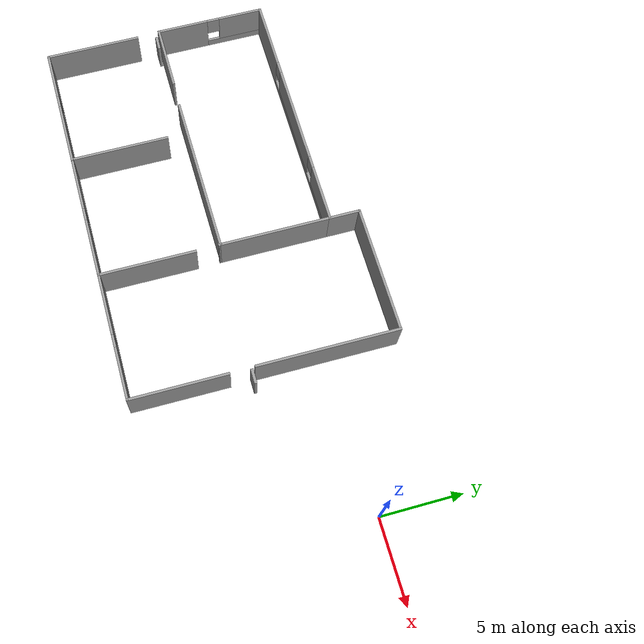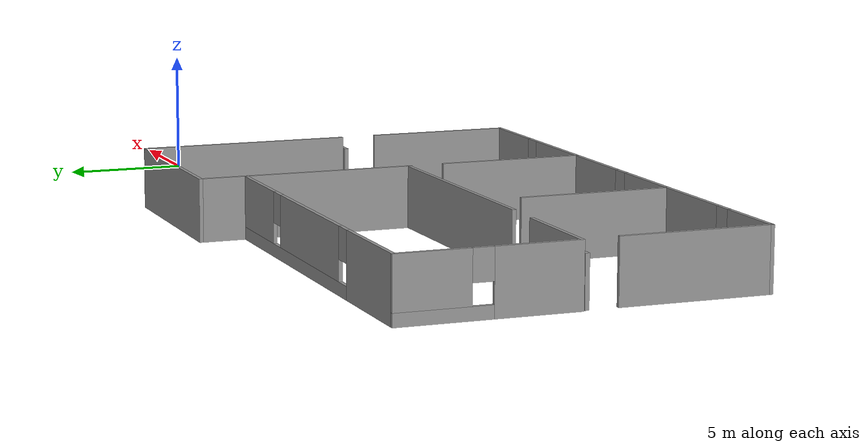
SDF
<?xml version='1.0'?>
<sdf version='1.6'>
  <model name='mybuilding'>
    <pose frame=''>-21.3689 -3.9287 0 0 -0 0</pose>
    <link name='Door_4'>
      <collision name='Door_4_Collision'>
        <geometry>
          <box>
            <size>0.9 0.17 2</size>
          </box>
        </geometry>
        <pose frame=''>0 0 1 0 -0 0</pose>
      </collision>
      <visual name='Door_4_Visual'>
        <pose frame=''>0 0 1 0 -0 0</pose>
        <geometry>
          <box>
            <size>0.9 0.17 2</size>
          </box>
        </geometry>
        <material>
          <script>
            <uri>file://media/materials/scripts/gazebo.material</uri>
            <name>Gazebo/Grey</name>
          </script>
        </material>
      </visual>
      <pose frame=''>-11.4439 -0.894916 0 0 -0 0</pose>
    </link>
    <link name='Door_5'>
      <collision name='Door_5_Collision'>
        <geometry>
          <box>
            <size>0.9 0.17 2</size>
          </box>
        </geometry>
        <pose frame=''>0 0 1 0 -0 0</pose>
      </collision>
      <visual name='Door_5_Visual'>
        <pose frame=''>0 0 1 0 -0 0</pose>
        <geometry>
          <box>
            <size>0.9 0.17 2</size>
          </box>
        </geometry>
        <material>
          <script>
            <uri>file://media/materials/scripts/gazebo.material</uri>
            <name>Gazebo/Grey</name>
          </script>
        </material>
      </visual>
      <pose frame=''>12.2646 -0.808846 0 0 -0 0</pose>
    </link>
    <link name='Wall_39'>
      <pose frame=''>-7.89313 -8.0223 0 0 -0 0</pose>
      <visual name='Wall_39_Visual_0'>
        <pose frame=''>-2.42526 0 1.25 0 -0 0</pose>
        <geometry>
          <box>
            <size>3.14947 0.15 2.5</size>
          </box>
        </geometry>
        <material>
          <script>
            <uri>file://media/materials/scripts/gazebo.material</uri>
            <name>Gazebo/Grey</name>
          </script>
          <ambient>1 1 1 1</ambient>
        </material>
        <meta>
          <layer>0</layer>
        </meta>
      </visual>
      <collision name='Wall_39_Collision_0'>
        <geometry>
          <box>
            <size>3.14947 0.15 2.5</size>
          </box>
        </geometry>
        <pose frame=''>-2.42526 0 1.25 0 -0 0</pose>
      </collision>
      <visual name='Wall_39_Visual_1'>
        <pose frame=''>1.57474 0 0.25 0 -0 0</pose>
        <geometry>
          <box>
            <size>4.85053 0.15 0.5</size>
          </box>
        </geometry>
        <material>
          <script>
            <uri>file://media/materials/scripts/gazebo.material</uri>
            <name>Gazebo/Grey</name>
          </script>
          <ambient>1 1 1 1</ambient>
        </material>
        <meta>
          <layer>0</layer>
        </meta>
      </visual>
      <collision name='Wall_39_Collision_1'>
        <geometry>
          <box>
            <size>4.85053 0.15 0.5</size>
          </box>
        </geometry>
        <pose frame=''>1.57474 0 0.25 0 -0 0</pose>
      </collision>
      <visual name='Wall_39_Visual_2'>
        <pose frame=''>1.97474 0 1.5 0 -0 0</pose>
        <geometry>
          <box>
            <size>4.05053 0.15 2</size>
          </box>
        </geometry>
        <material>
          <script>
            <uri>file://media/materials/scripts/gazebo.material</uri>
            <name>Gazebo/Grey</name>
          </script>
          <ambient>1 1 1 1</ambient>
        </material>
        <meta>
          <layer>0</layer>
        </meta>
      </visual>
      <collision name='Wall_39_Collision_2'>
        <geometry>
          <box>
            <size>4.05053 0.15 2</size>
          </box>
        </geometry>
        <pose frame=''>1.97474 0 1.5 0 -0 0</pose>
      </collision>
      <visual name='Wall_39_Visual_3'>
        <pose frame=''>-0.450527 0 1.9 0 -0 0</pose>
        <geometry>
          <box>
            <size>0.8 0.15 1.2</size>
          </box>
        </geometry>
        <material>
          <script>
            <uri>file://media/materials/scripts/gazebo.material</uri>
            <name>Gazebo/Grey</name>
          </script>
          <ambient>1 1 1 1</ambient>
        </material>
        <meta>
          <layer>0</layer>
        </meta>
      </visual>
      <collision name='Wall_39_Collision_3'>
        <geometry>
          <box>
            <size>0.8 0.15 1.2</size>
          </box>
        </geometry>
        <pose frame=''>-0.450527 0 1.9 0 -0 0</pose>
      </collision>
    </link>
    <link name='Wall_41'>
      <pose frame=''>0.131892 -8.02234 0 0 -0 1e-05</pose>
      <visual name='Wall_41_Visual_0'>
        <pose frame=''>-2.29715 0 1.25 0 -0 0</pose>
        <geometry>
          <box>
            <size>3.40571 0.15 2.5</size>
          </box>
        </geometry>
        <material>
          <script>
            <uri>file://media/materials/scripts/gazebo.material</uri>
            <name>Gazebo/Grey</name>
          </script>
          <ambient>1 1 1 1</ambient>
        </material>
        <meta>
          <layer>0</layer>
        </meta>
      </visual>
      <collision name='Wall_41_Collision_0'>
        <geometry>
          <box>
            <size>3.40571 0.15 2.5</size>
          </box>
        </geometry>
        <pose frame=''>-2.29715 0 1.25 0 -0 0</pose>
      </collision>
      <visual name='Wall_41_Visual_1'>
        <pose frame=''>1.70285 0 0.25 0 -0 0</pose>
        <geometry>
          <box>
            <size>4.59429 0.15 0.5</size>
          </box>
        </geometry>
        <material>
          <script>
            <uri>file://media/materials/scripts/gazebo.material</uri>
            <name>Gazebo/Grey</name>
          </script>
          <ambient>1 1 1 1</ambient>
        </material>
        <meta>
          <layer>0</layer>
        </meta>
      </visual>
      <collision name='Wall_41_Collision_1'>
        <geometry>
          <box>
            <size>4.59429 0.15 0.5</size>
          </box>
        </geometry>
        <pose frame=''>1.70285 0 0.25 0 -0 0</pose>
      </collision>
      <visual name='Wall_41_Visual_2'>
        <pose frame=''>2.10285 0 1.5 0 -0 0</pose>
        <geometry>
          <box>
            <size>3.79429 0.15 2</size>
          </box>
        </geometry>
        <material>
          <script>
            <uri>file://media/materials/scripts/gazebo.material</uri>
            <name>Gazebo/Grey</name>
          </script>
          <ambient>1 1 1 1</ambient>
        </material>
        <meta>
          <layer>0</layer>
        </meta>
      </visual>
      <collision name='Wall_41_Collision_2'>
        <geometry>
          <box>
            <size>3.79429 0.15 2</size>
          </box>
        </geometry>
        <pose frame=''>2.10285 0 1.5 0 -0 0</pose>
      </collision>
      <visual name='Wall_41_Visual_3'>
        <pose frame=''>-0.194294 0 1.9 0 -0 0</pose>
        <geometry>
          <box>
            <size>0.8 0.15 1.2</size>
          </box>
        </geometry>
        <material>
          <script>
            <uri>file://media/materials/scripts/gazebo.material</uri>
            <name>Gazebo/Grey</name>
          </script>
          <ambient>1 1 1 1</ambient>
        </material>
        <meta>
          <layer>0</layer>
        </meta>
      </visual>
      <collision name='Wall_41_Collision_3'>
        <geometry>
          <box>
            <size>0.8 0.15 1.2</size>
          </box>
        </geometry>
        <pose frame=''>-0.194294 0 1.9 0 -0 0</pose>
      </collision>
    </link>
    <link name='Wall_45'>
      <collision name='Wall_45_Collision'>
        <geometry>
          <box>
            <size>6 0.15 2.5</size>
          </box>
        </geometry>
        <pose frame=''>0 0 1.25 0 -0 0</pose>
      </collision>
      <visual name='Wall_45_Visual'>
        <pose frame=''>0 0 1.25 0 -0 0</pose>
        <geometry>
          <box>
            <size>6 0.15 2.5</size>
          </box>
        </geometry>
        <material>
          <script>
            <uri>file://media/materials/scripts/gazebo.material</uri>
            <name>Gazebo/Grey</name>
          </script>
          <ambient>1 1 1 1</ambient>
        </material>
        <meta>
          <layer>0</layer>
        </meta>
      </visual>
      <pose frame=''>-11.8181 -5.0973 0 0 -0 1.5708</pose>
    </link>
    <link name='Wall_47'>
      <collision name='Wall_47_Collision'>
        <geometry>
          <box>
            <size>6 0.15 2.5</size>
          </box>
        </geometry>
        <pose frame=''>0 0 1.25 0 -0 0</pose>
      </collision>
      <visual name='Wall_47_Visual'>
        <pose frame=''>0 0 1.25 0 -0 0</pose>
        <geometry>
          <box>
            <size>6 0.15 2.5</size>
          </box>
        </geometry>
        <material>
          <script>
            <uri>file://media/materials/scripts/gazebo.material</uri>
            <name>Gazebo/Grey</name>
          </script>
          <ambient>1 1 1 1</ambient>
        </material>
        <meta>
          <layer>0</layer>
        </meta>
      </visual>
      <pose frame=''>-3.96813 -4.9373 0 0 -0 1.5708</pose>
    </link>
    <link name='Wall_49'>
      <collision name='Wall_49_Collision'>
        <geometry>
          <box>
            <size>6 0.15 2.5</size>
          </box>
        </geometry>
        <pose frame=''>0 0 1.25 0 -0 0</pose>
      </collision>
      <visual name='Wall_49_Visual'>
        <pose frame=''>0 0 1.25 0 -0 0</pose>
        <geometry>
          <box>
            <size>6 0.15 2.5</size>
          </box>
        </geometry>
        <material>
          <script>
            <uri>file://media/materials/scripts/gazebo.material</uri>
            <name>Gazebo/Grey</name>
          </script>
          <ambient>1 1 1 1</ambient>
        </material>
        <meta>
          <layer>0</layer>
        </meta>
      </visual>
      <pose frame=''>4.05687 -5.0973 0 0 -0 1.5708</pose>
    </link>
    <link name='Wall_56'>
      <pose frame=''>7.98187 -8.0223 0 0 -0 0</pose>
      <visual name='Wall_56_Visual_0'>
        <pose frame=''>-2.03498 0 1.25 0 -0 0</pose>
        <geometry>
          <box>
            <size>3.93003 0.15 2.5</size>
          </box>
        </geometry>
        <material>
          <script>
            <uri>file://media/materials/scripts/gazebo.material</uri>
            <name>Gazebo/Grey</name>
          </script>
          <ambient>1 1 1 1</ambient>
        </material>
        <meta>
          <layer>0</layer>
        </meta>
      </visual>
      <collision name='Wall_56_Collision_0'>
        <geometry>
          <box>
            <size>3.93003 0.15 2.5</size>
          </box>
        </geometry>
        <pose frame=''>-2.03498 0 1.25 0 -0 0</pose>
      </collision>
      <visual name='Wall_56_Visual_1'>
        <pose frame=''>1.96502 0 0.25 0 -0 0</pose>
        <geometry>
          <box>
            <size>4.06997 0.15 0.5</size>
          </box>
        </geometry>
        <material>
          <script>
            <uri>file://media/materials/scripts/gazebo.material</uri>
            <name>Gazebo/Grey</name>
          </script>
          <ambient>1 1 1 1</ambient>
        </material>
        <meta>
          <layer>0</layer>
        </meta>
      </visual>
      <collision name='Wall_56_Collision_1'>
        <geometry>
          <box>
            <size>4.06997 0.15 0.5</size>
          </box>
        </geometry>
        <pose frame=''>1.96502 0 0.25 0 -0 0</pose>
      </collision>
      <visual name='Wall_56_Visual_2'>
        <pose frame=''>2.36502 0 1.5 0 -0 0</pose>
        <geometry>
          <box>
            <size>3.26997 0.15 2</size>
          </box>
        </geometry>
        <material>
          <script>
            <uri>file://media/materials/scripts/gazebo.material</uri>
            <name>Gazebo/Grey</name>
          </script>
          <ambient>1 1 1 1</ambient>
        </material>
        <meta>
          <layer>0</layer>
        </meta>
      </visual>
      <collision name='Wall_56_Collision_2'>
        <geometry>
          <box>
            <size>3.26997 0.15 2</size>
          </box>
        </geometry>
        <pose frame=''>2.36502 0 1.5 0 -0 0</pose>
      </collision>
      <visual name='Wall_56_Visual_3'>
        <pose frame=''>0.330034 0 1.9 0 -0 0</pose>
        <geometry>
          <box>
            <size>0.8 0.15 1.2</size>
          </box>
        </geometry>
        <material>
          <script>
            <uri>file://media/materials/scripts/gazebo.material</uri>
            <name>Gazebo/Grey</name>
          </script>
          <ambient>1 1 1 1</ambient>
        </material>
        <meta>
          <layer>0</layer>
        </meta>
      </visual>
      <collision name='Wall_56_Collision_3'>
        <geometry>
          <box>
            <size>0.8 0.15 1.2</size>
          </box>
        </geometry>
        <pose frame=''>0.330034 0 1.9 0 -0 0</pose>
      </collision>
    </link>
    <link name='Wall_59'>
      <collision name='Wall_59_Collision'>
        <geometry>
          <box>
            <size>6 0.15 2.5</size>
          </box>
        </geometry>
        <pose frame=''>0 0 1.25 0 -0 0</pose>
      </collision>
      <visual name='Wall_59_Visual'>
        <pose frame=''>0 0 1.25 0 -0 0</pose>
        <geometry>
          <box>
            <size>6 0.15 2.5</size>
          </box>
        </geometry>
        <material>
          <script>
            <uri>file://media/materials/scripts/gazebo.material</uri>
            <name>Gazebo/Grey</name>
          </script>
          <ambient>1 1 1 1</ambient>
        </material>
        <meta>
          <layer>0</layer>
        </meta>
      </visual>
      <pose frame=''>11.9069 -5.0973 0 0 -0 1.5708</pose>
    </link>
    <link name='Wall_63'>
      <pose frame=''>-11.9069 2.74738 0 0 -0 1.5708</pose>
      <visual name='Wall_63_Visual_0'>
        <pose frame=''>-1.83915 0 1.25 0 -0 0</pose>
        <geometry>
          <box>
            <size>3.32169 0.15 2.5</size>
          </box>
        </geometry>
        <material>
          <script>
            <uri>file://media/materials/scripts/gazebo.material</uri>
            <name>Gazebo/Grey</name>
          </script>
          <ambient>1 1 1 1</ambient>
        </material>
        <meta>
          <layer>0</layer>
        </meta>
      </visual>
      <collision name='Wall_63_Collision_0'>
        <geometry>
          <box>
            <size>3.32169 0.15 2.5</size>
          </box>
        </geometry>
        <pose frame=''>-1.83915 0 1.25 0 -0 0</pose>
      </collision>
      <visual name='Wall_63_Visual_1'>
        <pose frame=''>1.66085 0 0.25 0 -0 0</pose>
        <geometry>
          <box>
            <size>3.67831 0.15 0.5</size>
          </box>
        </geometry>
        <material>
          <script>
            <uri>file://media/materials/scripts/gazebo.material</uri>
            <name>Gazebo/Grey</name>
          </script>
          <ambient>1 1 1 1</ambient>
        </material>
        <meta>
          <layer>0</layer>
        </meta>
      </visual>
      <collision name='Wall_63_Collision_1'>
        <geometry>
          <box>
            <size>3.67831 0.15 0.5</size>
          </box>
        </geometry>
        <pose frame=''>1.66085 0 0.25 0 -0 0</pose>
      </collision>
      <visual name='Wall_63_Visual_2'>
        <pose frame=''>2.06085 0 1.5 0 -0 0</pose>
        <geometry>
          <box>
            <size>2.87831 0.15 2</size>
          </box>
        </geometry>
        <material>
          <script>
            <uri>file://media/materials/scripts/gazebo.material</uri>
            <name>Gazebo/Grey</name>
          </script>
          <ambient>1 1 1 1</ambient>
        </material>
        <meta>
          <layer>0</layer>
        </meta>
      </visual>
      <collision name='Wall_63_Collision_2'>
        <geometry>
          <box>
            <size>2.87831 0.15 2</size>
          </box>
        </geometry>
        <pose frame=''>2.06085 0 1.5 0 -0 0</pose>
      </collision>
      <visual name='Wall_63_Visual_3'>
        <pose frame=''>0.221694 0 1.9 0 -0 0</pose>
        <geometry>
          <box>
            <size>0.8 0.15 1.2</size>
          </box>
        </geometry>
        <material>
          <script>
            <uri>file://media/materials/scripts/gazebo.material</uri>
            <name>Gazebo/Grey</name>
          </script>
          <ambient>1 1 1 1</ambient>
        </material>
        <meta>
          <layer>0</layer>
        </meta>
      </visual>
      <collision name='Wall_63_Collision_3'>
        <geometry>
          <box>
            <size>0.8 0.15 1.2</size>
          </box>
        </geometry>
        <pose frame=''>0.221694 0 1.9 0 -0 0</pose>
      </collision>
    </link>
    <link name='Wall_65'>
      <pose frame=''>-3.98187 6.17238 0 0 -0 0</pose>
      <visual name='Wall_65_Visual_0'>
        <pose frame=''>-5.79935 0 1.25 0 -0 0</pose>
        <geometry>
          <box>
            <size>4.40131 0.15 2.5</size>
          </box>
        </geometry>
        <material>
          <script>
            <uri>file://media/materials/scripts/gazebo.material</uri>
            <name>Gazebo/Grey</name>
          </script>
          <ambient>1 1 1 1</ambient>
        </material>
        <meta>
          <layer>0</layer>
        </meta>
      </visual>
      <collision name='Wall_65_Collision_0'>
        <geometry>
          <box>
            <size>4.40131 0.15 2.5</size>
          </box>
        </geometry>
        <pose frame=''>-5.79935 0 1.25 0 -0 0</pose>
      </collision>
      <visual name='Wall_65_Visual_1'>
        <pose frame=''>2.20065 0 0.25 0 -0 0</pose>
        <geometry>
          <box>
            <size>11.5987 0.15 0.5</size>
          </box>
        </geometry>
        <material>
          <script>
            <uri>file://media/materials/scripts/gazebo.material</uri>
            <name>Gazebo/Grey</name>
          </script>
          <ambient>1 1 1 1</ambient>
        </material>
        <meta>
          <layer>0</layer>
        </meta>
      </visual>
      <collision name='Wall_65_Collision_1'>
        <geometry>
          <box>
            <size>11.5987 0.15 0.5</size>
          </box>
        </geometry>
        <pose frame=''>2.20065 0 0.25 0 -0 0</pose>
      </collision>
      <visual name='Wall_65_Visual_2'>
        <pose frame=''>0.406911 0 1.5 0 -0 0</pose>
        <geometry>
          <box>
            <size>6.41121 0.15 2</size>
          </box>
        </geometry>
        <material>
          <script>
            <uri>file://media/materials/scripts/gazebo.material</uri>
            <name>Gazebo/Grey</name>
          </script>
          <ambient>1 1 1 1</ambient>
        </material>
        <meta>
          <layer>0</layer>
        </meta>
      </visual>
      <collision name='Wall_65_Collision_2'>
        <geometry>
          <box>
            <size>6.41121 0.15 2</size>
          </box>
        </geometry>
        <pose frame=''>0.406911 0 1.5 0 -0 0</pose>
      </collision>
      <visual name='Wall_65_Visual_3'>
        <pose frame=''>6.20626 0 1.5 0 -0 0</pose>
        <geometry>
          <box>
            <size>3.58749 0.15 2</size>
          </box>
        </geometry>
        <material>
          <script>
            <uri>file://media/materials/scripts/gazebo.material</uri>
            <name>Gazebo/Grey</name>
          </script>
          <ambient>1 1 1 1</ambient>
        </material>
        <meta>
          <layer>0</layer>
        </meta>
      </visual>
      <collision name='Wall_65_Collision_3'>
        <geometry>
          <box>
            <size>3.58749 0.15 2</size>
          </box>
        </geometry>
        <pose frame=''>6.20626 0 1.5 0 -0 0</pose>
      </collision>
      <visual name='Wall_65_Visual_4'>
        <pose frame=''>-3.19869 0 1.9 0 -0 0</pose>
        <geometry>
          <box>
            <size>0.8 0.15 1.2</size>
          </box>
        </geometry>
        <material>
          <script>
            <uri>file://media/materials/scripts/gazebo.material</uri>
            <name>Gazebo/Grey</name>
          </script>
          <ambient>1 1 1 1</ambient>
        </material>
        <meta>
          <layer>0</layer>
        </meta>
      </visual>
      <collision name='Wall_65_Collision_4'>
        <geometry>
          <box>
            <size>0.8 0.15 1.2</size>
          </box>
        </geometry>
        <pose frame=''>-3.19869 0 1.9 0 -0 0</pose>
      </collision>
      <visual name='Wall_65_Visual_5'>
        <pose frame=''>4.01251 0 1.9 0 -0 0</pose>
        <geometry>
          <box>
            <size>0.8 0.15 1.2</size>
          </box>
        </geometry>
        <material>
          <script>
            <uri>file://media/materials/scripts/gazebo.material</uri>
            <name>Gazebo/Grey</name>
          </script>
          <ambient>1 1 1 1</ambient>
        </material>
        <meta>
          <layer>0</layer>
        </meta>
      </visual>
      <collision name='Wall_65_Collision_5'>
        <geometry>
          <box>
            <size>0.8 0.15 1.2</size>
          </box>
        </geometry>
        <pose frame=''>4.01251 0 1.9 0 -0 0</pose>
      </collision>
    </link>
    <link name='Wall_70'>
      <collision name='Wall_70_Collision'>
        <geometry>
          <box>
            <size>4.25 0.15 2.5</size>
          </box>
        </geometry>
        <pose frame=''>0 0 1.25 0 -0 0</pose>
      </collision>
      <visual name='Wall_70_Visual'>
        <pose frame=''>0 0 1.25 0 -0 0</pose>
        <geometry>
          <box>
            <size>4.25 0.15 2.5</size>
          </box>
        </geometry>
        <material>
          <script>
            <uri>file://media/materials/scripts/gazebo.material</uri>
            <name>Gazebo/Grey</name>
          </script>
          <ambient>1 1 1 1</ambient>
        </material>
        <meta>
          <layer>0</layer>
        </meta>
      </visual>
      <pose frame=''>-9.85687 -0.677621 0 0 -0 0</pose>
    </link>
    <link name='Wall_72'>
      <collision name='Wall_72_Collision'>
        <geometry>
          <box>
            <size>10.2157 0.15 2.5</size>
          </box>
        </geometry>
        <pose frame=''>0 0 1.25 0 -0 0</pose>
      </collision>
      <visual name='Wall_72_Visual'>
        <pose frame=''>0 0 1.25 0 -0 0</pose>
        <geometry>
          <box>
            <size>10.2157 0.15 2.5</size>
          </box>
        </geometry>
        <material>
          <script>
            <uri>file://media/materials/scripts/gazebo.material</uri>
            <name>Gazebo/Grey</name>
          </script>
          <ambient>1 1 1 1</ambient>
        </material>
        <meta>
          <layer>0</layer>
        </meta>
      </visual>
      <pose frame=''>-1.01223 -0.677621 0 0 -0 0.009244</pose>
    </link>
    <link name='Wall_73'>
      <collision name='Wall_73_Collision'>
        <geometry>
          <box>
            <size>7 0.15 2.5</size>
          </box>
        </geometry>
        <pose frame=''>0 0 1.25 0 -0 0</pose>
      </collision>
      <visual name='Wall_73_Visual'>
        <pose frame=''>0 0 1.25 0 -0 0</pose>
        <geometry>
          <box>
            <size>7 0.15 2.5</size>
          </box>
        </geometry>
        <material>
          <script>
            <uri>file://media/materials/scripts/gazebo.material</uri>
            <name>Gazebo/Grey</name>
          </script>
          <ambient>1 1 1 1</ambient>
        </material>
        <meta>
          <layer>0</layer>
        </meta>
      </visual>
      <pose frame=''>4.02039 2.74738 0 0 -0 1.5708</pose>
    </link>
    <link name='Wall_75'>
      <collision name='Wall_75_Collision'>
        <geometry>
          <box>
            <size>2 0.15 2.5</size>
          </box>
        </geometry>
        <pose frame=''>0 0 1.25 0 -0 0</pose>
      </collision>
      <visual name='Wall_75_Visual'>
        <pose frame=''>0 0 1.25 0 -0 0</pose>
        <geometry>
          <box>
            <size>2 0.15 2.5</size>
          </box>
        </geometry>
        <material>
          <script>
            <uri>file://media/materials/scripts/gazebo.material</uri>
            <name>Gazebo/Grey</name>
          </script>
          <ambient>1 1 1 1</ambient>
        </material>
        <meta>
          <layer>0</layer>
        </meta>
      </visual>
      <pose frame=''>4.02039 7.09738 0 0 -0 1.5708</pose>
    </link>
    <link name='Wall_76'>
      <collision name='Wall_76_Collision'>
        <geometry>
          <box>
            <size>8 0.15 2.5</size>
          </box>
        </geometry>
        <pose frame=''>0 0 1.25 0 -0 0</pose>
      </collision>
      <visual name='Wall_76_Visual'>
        <pose frame=''>0 0 1.25 0 -0 0</pose>
        <geometry>
          <box>
            <size>8 0.15 2.5</size>
          </box>
        </geometry>
        <material>
          <script>
            <uri>file://media/materials/scripts/gazebo.material</uri>
            <name>Gazebo/Grey</name>
          </script>
          <ambient>1 1 1 1</ambient>
        </material>
        <meta>
          <layer>0</layer>
        </meta>
      </visual>
      <pose frame=''>7.94538 8.02238 0 0 -0 0</pose>
    </link>
    <link name='Wall_77'>
      <collision name='Wall_77_Collision'>
        <geometry>
          <box>
            <size>8.75 0.15 2.5</size>
          </box>
        </geometry>
        <pose frame=''>0 0 1.25 0 -0 0</pose>
      </collision>
      <visual name='Wall_77_Visual'>
        <pose frame=''>0 0 1.25 0 -0 0</pose>
        <geometry>
          <box>
            <size>8.75 0.15 2.5</size>
          </box>
        </geometry>
        <material>
          <script>
            <uri>file://media/materials/scripts/gazebo.material</uri>
            <name>Gazebo/Grey</name>
          </script>
          <ambient>1 1 1 1</ambient>
        </material>
        <meta>
          <layer>0</layer>
        </meta>
      </visual>
      <pose frame=''>11.8704 3.72238 0 0 0 -1.5708</pose>
    </link>
    <static>1</static>
  </model>
</sdf>
